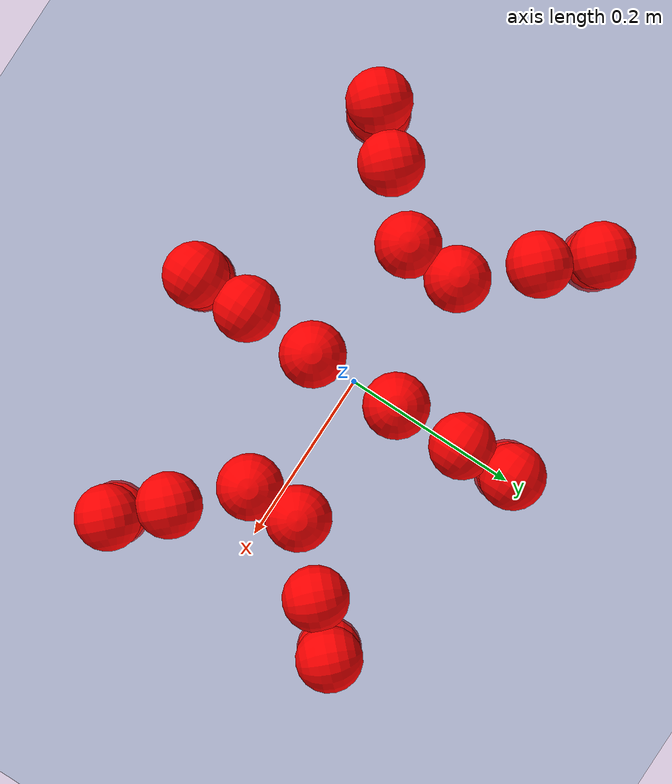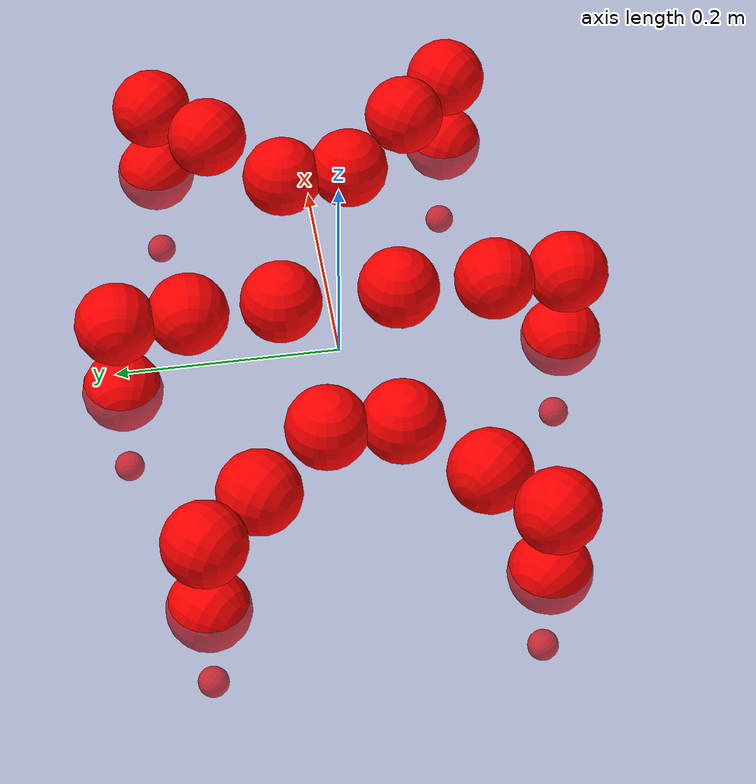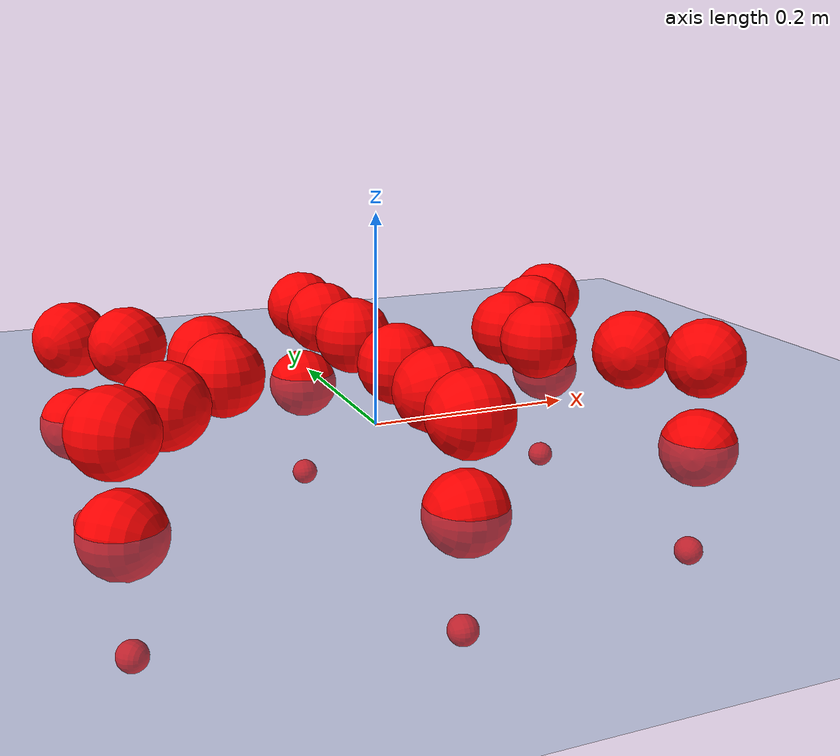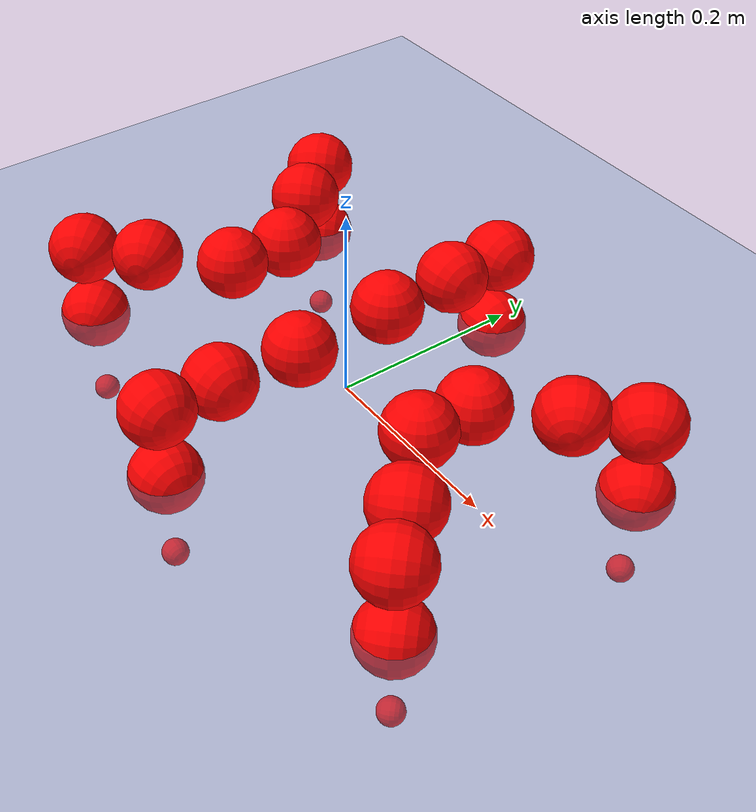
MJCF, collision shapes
<mujoco model="Golem">
  <compiler angle="radian" assetdir="assets" balanceinertia="true" inertiafromgeom="false"/>

  <option timestep="0.005" density="1.2" viscosity="2e-05"/>

  <size nkey="1"/>

  <visual>
    <quality shadowsize="8192"/>
    <map shadowclip="0.5"/>
  </visual>

  <default>
    <default class="/">
      <joint armature="0.01" damping="0.01" frictionloss="0.01"/>
      <geom contype="0" conaffinity="0" group="1" solref="-1000 -80"/>
      <site size="0.01 0.005 0.005" group="5"/>
      <general forcelimited="true" biastype="affine" gainprm="25" biasprm="0 -25 -0.5"/>
      <default class="visual">
        <geom type="mesh" group="2"/>
      </default>
      <default class="collision">
        <geom group="3"/>
      </default>
      <default class="foot">
        <geom size="0.01 0 0" condim="6" group="4" priority="1" solimp="0.015 1 0.01"/>
      </default>
      <default class="reward_collision_sphere">
        <geom group="5" rgba="1 0 0 1"/>
      </default>
    </default>
  </default>

  <asset>
    <texture type="skybox" colorspace="auto" name="//unnamed_texture_0" builtin="gradient" rgb1="0.95 0.95 0.95" rgb2="0.95 0.95 0.95" width="100" height="600"/>
    <texture type="2d" colorspace="auto" name="texplane" builtin="checker" rgb1="0.345 0.575 0.748" rgb2="0.345 0.575 0.748" markrgb="1 1 1" width="512" height="512"/>
    <material name="MatPlane" class="/" texture="texplane" texuniform="true" texrepeat="2 2" specular="0.9"/>
    <mesh name="body" class="/" file="body.stl" scale="0.001 0.001 0.001"/>
    <mesh name="coxa" class="/" file="coxa.stl" scale="0.001 0.001 0.001"/>
    <mesh name="femur" class="/" file="femur.stl" scale="0.001 0.001 0.001"/>
    <mesh name="tibia" class="/" file="tibia.stl" scale="0.001 0.001 0.001"/>
    <mesh name="tarsus" class="/" file="tarsus.stl" scale="0.001 0.001 0.001"/>
  </asset>

  <worldbody>
    <geom name="floor" class="/" size="100 100 0.125" type="plane" group="0" material="MatPlane"/>
    <light name="toplight_shadow" class="/" pos="0 0 5" dir="0.0990148 0.0990148 -0.990148" type="directional" ambient="0.04 0.04 0.04" diffuse="0.55 0.55 0.55" specular="0.12 0.12 0.12"/>
    <light name="toplight_fill" class="/" pos="0 0 5" dir="0.0990148 0.0990148 -0.990148" type="directional" castshadow="false" ambient="0.04 0.04 0.04" diffuse="0.3 0.3 0.3" specular="0.08 0.08 0.08"/>
    <body name="trunk" pos="-0.000184857 8.52039e-06 0.000599904" quat="1 4.26194e-05 -0.000273576 0.000128825">
      <inertial pos="0.000989215 -0.00131802 -0.00117996" quat="0.999995 0.000927906 0.0028965 0.00038374" mass="2.84268" diaginertia="0.00922033 0.000891451 0.0193611"/>
      <joint name="//unnamed_joint_0" type="free"/>
      <geom name="//unnamed_geom_1" class="/" pos="0 0 0.0726044" quat="1 0 0 0" type="mesh" rgba="0.9 0.9 0.9 1" mesh="body"/>
      <site name="imu" class="/" pos="0.12923 0.00128372 0.104389" size="0.00907085"/>
      <camera name="track" class="/" pos="0 -1.22531 0" quat="0.707107 0.707107 0 0" mode="trackcom"/>
      <camera name="ego_camera" class="/" pos="0.126641 0 0.113444" quat="-0.5 -0.5 0.5 0.5"/>
      <body name="coxa_RR" pos="-0.173859 -0.051828 0.0738811" quat="0.382647 3.84222e-05 -5.15558e-05 -0.923895">
        <inertial pos="-0.000570589 0.000576435 0.000390329" quat="1 -0.000705944 -0.000323411 2.91686e-05" mass="0.149191" diaginertia="0.00882466 0.00087628 0.0186715"/>
        <joint name="coxa_joint_RR" class="/" pos="0 0 0" axis="-0.00677242 -0.00450292 -0.999967" range="-3.13868 3.13583" armature="0.00912778" damping="0" frictionloss="0.0090742"/>
        <geom name="//unnamed_geom_2" class="/" type="mesh" rgba="0.2 0.2 0.2 1" mesh="coxa"/>
        <geom name="//unnamed_geom_3" class="reward_collision_sphere" size="0.0362834" pos="-0.0292247 0 0"/>
        <body name="femur_RR" pos="0.0595778 -7.87665e-05 -0.000716272" quat="0.500195 -0.499933 0.499865 0.500007">
          <inertial pos="-0.000614761 -0.000234253 0.000466556" quat="1 0.000259153 0.000770389 -0.000520112" mass="0.146997" diaginertia="0.00882594 0.000845326 0.0183194"/>
          <joint name="femur_joint_RR" class="/" pos="0 0 0" axis="-0.00791455 0.00433176 -0.999959" range="-3.14113 3.1193" armature="0.00909437" damping="0.000286951" frictionloss="0.00865055"/>
          <geom name="//unnamed_geom_4" class="/" type="mesh" rgba="0.9 0.9 0.9 1" mesh="femur"/>
          <geom name="//unnamed_geom_5" class="reward_collision_sphere" size="0.0362834"/>
          <body name="tibia_RR" pos="0.00075421 -0.0674022 -0.0013653" quat="2.82669e-05 1 -5.36829e-05 -3.05718e-05">
            <inertial pos="-0.000364102 -0.00180285 0.000275039" quat="0.999948 0.00793753 0.00619518 0.00139577" mass="0.149481" diaginertia="0.00892512 0.000866513 0.0187137"/>
            <joint name="tibia_joint_RR" class="/" pos="0 0 0" axis="-0.00148573 0.000819461 0.999999" range="-3.13808 3.15112" armature="0.00920607" damping="0" frictionloss="0.00953114"/>
            <geom name="//unnamed_geom_6" class="/" type="mesh" rgba="0.2 0.2 0.2 1" mesh="tibia"/>
            <geom name="//unnamed_geom_7" class="reward_collision_sphere" size="0.0362834"/>
            <body name="tarsus_RR" pos="0.082744 -0.00192193 -7.7434e-05" quat="1 0.00021749 0.000116714 -9.85193e-05">
              <inertial pos="0.0585775 0.000680408 -0.000172162" quat="0.496378 0.504273 0.503604 0.495681" mass="0.151795" diaginertia="0.00884441 0.000865175 0.0185693"/>
              <joint name="tarsus_joint_RR" class="/" pos="0 0 0" axis="2.77521e-06 0.000694622 1" range="-3.14041 3.13663" armature="0.00945007" damping="0.00501297" frictionloss="0.00944338"/>
              <geom name="//unnamed_geom_8" class="/" type="mesh" rgba="0.9 0.9 0.9 1" mesh="tarsus"/>
              <geom name="foot_1" class="foot" size="0.00876076" pos="0.109106 0 0" quat="0 -0.707107 0 0.707107"/>
              <geom name="//unnamed_geom_10" class="reward_collision_sphere" size="0.0362834"/>
              <geom name="//unnamed_geom_11" class="reward_collision_sphere" size="0.0136063" pos="0.104722 0 0"/>
              <site name="foot_1" class="foot" pos="0.109106 0 0" quat="0 -0.707107 0 0.707107" size="0.00907085"/>
            </body>
          </body>
        </body>
      </body>
      <body name="coxa_RM" pos="-0.000364291 -0.0818933 0.0734508" quat="0.706452 0.000400204 6.62411e-05 -0.707761">
        <inertial pos="0.000529488 -0.00024833 -0.000869641" quat="1 0.000175365 -0.000273086 0.000117671" mass="0.151004" diaginertia="0.00884502 0.000876015 0.0187264"/>
        <joint name="coxa_joint_RM" class="/" pos="0 0 0" axis="3.52927e-05 -0.000977249 -1" range="-3.12946 3.13878" armature="0.0092824" damping="0.0126628" frictionloss="0.00861181"/>
        <geom name="//unnamed_geom_12" class="/" type="mesh" rgba="0.2 0.2 0.2 1" mesh="coxa"/>
        <geom name="//unnamed_geom_13" class="reward_collision_sphere" size="0.0362834" pos="-0.0292247 0 0"/>
        <body name="femur_RM" pos="0.0561228 -0.00215993 0.000876312" quat="0.499998 -0.500034 0.499986 0.499982">
          <inertial pos="0.00192438 4.02862e-05 -0.000312153" quat="0.999988 -0.000142585 -0.00386079 -0.00306665" mass="0.146175" diaginertia="0.00841771 0.0008472 0.0179443"/>
          <joint name="femur_joint_RM" class="/" pos="0 0 0" axis="0.000348202 0.000999671 -0.999999" range="-3.14375 3.10437" armature="0.00875434" damping="0.00890918" frictionloss="0.009339"/>
          <geom name="//unnamed_geom_14" class="/" type="mesh" rgba="0.9 0.9 0.9 1" mesh="femur"/>
          <geom name="//unnamed_geom_15" class="reward_collision_sphere" size="0.0362834"/>
          <body name="tibia_RM" pos="0.000618665 -0.0646316 -0.00047444" quat="6.41628e-06 1 -0.000141856 -4.64196e-05">
            <inertial pos="0.000276687 0.00236693 0.000598976" quat="0.999999 -0.00158288 -4.96056e-05 -0.000316133" mass="0.149784" diaginertia="0.00881409 0.000867077 0.0188341"/>
            <joint name="tibia_joint_RM" class="/" pos="0 0 0" axis="0.00110587 2.48578e-05 0.999999" range="-3.13879 3.1362" armature="0.00947307" damping="0.0165787" frictionloss="0.00905442"/>
            <geom name="//unnamed_geom_16" class="/" type="mesh" rgba="0.2 0.2 0.2 1" mesh="tibia"/>
            <geom name="//unnamed_geom_17" class="reward_collision_sphere" size="0.0362834"/>
            <body name="tarsus_RM" pos="0.0832579 -0.00115301 0.000718527" quat="1 -2.48836e-05 4.00339e-05 -2.18501e-05">
              <inertial pos="0.0597725 -0.000154021 -0.000679557" quat="0.500171 0.499953 0.499893 0.499983" mass="0.153546" diaginertia="0.008767 0.000867329 0.0193026"/>
              <joint name="tarsus_joint_RM" class="/" pos="0 0 0" axis="-0.00403987 0.00215976 0.99999" stiffness="0.00196291" range="-3.15346 3.11706" armature="0.00897157" damping="0.00823962" frictionloss="0.00875062"/>
              <geom name="//unnamed_geom_18" class="/" type="mesh" rgba="0.9 0.9 0.9 1" mesh="tarsus"/>
              <geom name="foot_2" class="foot" size="0.00912343" pos="0.109106 0 0" quat="0 -0.707107 0 0.707107"/>
              <geom name="//unnamed_geom_20" class="reward_collision_sphere" size="0.0362834"/>
              <geom name="//unnamed_geom_21" class="reward_collision_sphere" size="0.0136063" pos="0.104722 0 0"/>
              <site name="foot_2" class="foot" pos="0.109106 0 0" quat="0 -0.707107 0 0.707107" size="0.00907085"/>
            </body>
          </body>
        </body>
      </body>
      <body name="coxa_RF" pos="0.174681 -0.051975 0.0745848" quat="0.923723 -3.76423e-05 -5.20839e-05 -0.383062">
        <inertial pos="0.000618088 -0.00185711 0.000948901" quat="0.999963 -0.00183795 0.00781426 -0.00312253" mass="0.146904" diaginertia="0.0088477 0.000860312 0.0186877"/>
        <joint name="coxa_joint_RF" class="/" pos="0 0 0" axis="0.00118378 0.000719711 -0.999999" range="-3.10061 3.12488" armature="0.00858475" damping="0" frictionloss="0.00916348"/>
        <geom name="//unnamed_geom_22" class="/" type="mesh" rgba="0.2 0.2 0.2 1" mesh="coxa"/>
        <geom name="//unnamed_geom_23" class="reward_collision_sphere" size="0.0362834" pos="-0.0292247 0 0"/>
        <body name="femur_RF" pos="0.0590204 0.00111418 -0.000448222" quat="0.500029 -0.499992 0.500013 0.499966">
          <inertial pos="-0.000368371 0.00162636 0.000218479" quat="0.999991 0.000674695 -0.00401878 0.00077502" mass="0.149926" diaginertia="0.00909643 0.00088213 0.0194987"/>
          <joint name="femur_joint_RF" class="/" pos="0 0 0" axis="-0.000297081 -0.00181857 -0.999998" range="-3.14876 3.15409" armature="0.0090637" damping="0.00958308" frictionloss="0.00943869"/>
          <geom name="//unnamed_geom_24" class="/" type="mesh" rgba="0.9 0.9 0.9 1" mesh="femur"/>
          <geom name="//unnamed_geom_25" class="reward_collision_sphere" size="0.0362834"/>
          <body name="tibia_RF" pos="0.000793109 -0.0661897 -0.000595923" quat="-3.1284e-06 1 3.73616e-05 0.00013154">
            <inertial pos="0.000351953 0.000292669 -0.002188" quat="0.999977 -0.00527972 0.00258988 0.00324673" mass="0.15192" diaginertia="0.00893571 0.000854539 0.019199"/>
            <joint name="tibia_joint_RF" class="/" pos="0 0 0" axis="0.0022079 -0.00483105 0.999986" stiffness="0.00138935" range="-3.13661 3.12649" armature="0.0088865" damping="0.0127989" frictionloss="0.00884677"/>
            <geom name="//unnamed_geom_26" class="/" type="mesh" rgba="0.2 0.2 0.2 1" mesh="tibia"/>
            <geom name="//unnamed_geom_27" class="reward_collision_sphere" size="0.0362834"/>
            <body name="tarsus_RF" pos="0.0861834 0.00125333 -0.00120519" quat="1 -0.000296012 -0.00013164 -5.80903e-05">
              <inertial pos="0.0591061 -0.000157512 -0.000740144" quat="0.500503 0.499572 0.500035 0.499889" mass="0.148677" diaginertia="0.00883519 0.000842918 0.0182308"/>
              <joint name="tarsus_joint_RF" class="/" pos="0 0 0" axis="0.000379581 0.00222241 0.999997" stiffness="0.0234768" range="-3.1242 3.13815" armature="0.00887423" damping="0" frictionloss="0.00905546"/>
              <geom name="//unnamed_geom_28" class="/" type="mesh" rgba="0.9 0.9 0.9 1" mesh="tarsus"/>
              <geom name="foot_3" class="foot" size="0.00928298" pos="0.109106 0 0" quat="0 -0.707107 0 0.707107"/>
              <geom name="//unnamed_geom_30" class="reward_collision_sphere" size="0.0362834"/>
              <geom name="//unnamed_geom_31" class="reward_collision_sphere" size="0.0136063" pos="0.104722 0 0"/>
              <site name="foot_3" class="foot" pos="0.109106 0 0" quat="0 -0.707107 0 0.707107" size="0.00907085"/>
            </body>
          </body>
        </body>
      </body>
      <body name="coxa_LR" pos="-0.171855 0.0528862 0.0744943" quat="0.382767 -0.000310292 8.0988e-05 0.923845">
        <inertial pos="-0.000211621 -0.00121036 0.000192383" quat="0.999995 0.000673354 0.000514136 -0.00309498" mass="0.148617" diaginertia="0.00896891 0.000853529 0.0181698"/>
        <joint name="coxa_joint_LR" class="/" pos="0 0 0" axis="-0.00137942 0.00221962 -0.999997" range="-3.12924 3.12067" armature="0.00860991" damping="0.0094879" frictionloss="0.00921622"/>
        <geom name="//unnamed_geom_32" class="/" type="mesh" rgba="0.2 0.2 0.2 1" mesh="coxa"/>
        <geom name="//unnamed_geom_33" class="reward_collision_sphere" size="0.0362834" pos="-0.0292247 0 0"/>
        <body name="femur_LR" pos="0.059343 -0.00297536 -0.000288916" quat="0.500156 -0.499672 0.500508 0.499663">
          <inertial pos="0.000316592 -0.00248394 0.000167847" quat="1 0.000211557 -4.06506e-05 -0.000190303" mass="0.15015" diaginertia="0.00857289 0.000867067 0.0183237"/>
          <joint name="femur_joint_LR" class="/" pos="0 0 0" axis="0.00128775 0.00209082 0.999997" stiffness="0.000661647" range="-3.1092 3.13459" armature="0.00883717" damping="0" frictionloss="0.00908531"/>
          <geom name="//unnamed_geom_34" class="/" type="mesh" rgba="0.9 0.9 0.9 1" mesh="femur"/>
          <geom name="//unnamed_geom_35" class="reward_collision_sphere" size="0.0362834"/>
          <body name="tibia_LR" pos="0.0020853 -0.0673905 -0.00365527" quat="-0.000201308 1 -1.26502e-05 -0.000155934">
            <inertial pos="-0.000675568 -0.000855133 0.00089803" quat="0.999977 -0.000981499 -0.00601587 -0.00290081" mass="0.14927" diaginertia="0.00862594 0.000862428 0.0186921"/>
            <joint name="tibia_joint_LR" class="/" pos="0 0 0" axis="-0.00330195 0.000833483 -0.999994" range="-3.15059 3.17212" armature="0.00864703" damping="0" frictionloss="0.00909561"/>
            <geom name="//unnamed_geom_36" class="/" type="mesh" rgba="0.2 0.2 0.2 1" mesh="tibia"/>
            <geom name="//unnamed_geom_37" class="reward_collision_sphere" size="0.0362834"/>
            <body name="tarsus_LR" pos="0.0859106 0.00032069 -0.001162" quat="1 -7.97944e-05 -7.34411e-05 -0.000110081">
              <inertial pos="0.0610262 -0.00160822 -0.00139663" quat="0.502869 0.496083 0.501085 0.499939" mass="0.148909" diaginertia="0.00864901 0.000868646 0.0183982"/>
              <joint name="tarsus_joint_LR" class="/" pos="0 0 0" axis="-0.00959391 -0.00662876 -0.999932" range="-3.11901 3.14504" armature="0.00886294" damping="0" frictionloss="0.00922026"/>
              <geom name="//unnamed_geom_38" class="/" type="mesh" rgba="0.9 0.9 0.9 1" mesh="tarsus"/>
              <geom name="foot_4" class="foot" size="0.00983605" pos="0.109106 0 0" quat="0.707107 0 -0.707107 0"/>
              <geom name="//unnamed_geom_40" class="reward_collision_sphere" size="0.0362834"/>
              <geom name="//unnamed_geom_41" class="reward_collision_sphere" size="0.0136063" pos="0.104722 0 0"/>
              <site name="foot_4" class="foot" pos="0.109106 0 0" quat="0.707107 0 -0.707107 0" size="0.00907085"/>
            </body>
          </body>
        </body>
      </body>
      <body name="coxa_LM" pos="-0.00310825 0.0807493 0.0745995" quat="0.706999 0.000101421 -0.000145807 0.707214">
        <inertial pos="0.00108599 -0.000431785 -0.000728757" quat="0.999976 0.00263658 -0.004636 -0.00449111" mass="0.151402" diaginertia="0.00890305 0.000887273 0.0193371"/>
        <joint name="coxa_joint_LM" class="/" pos="0 0 0" axis="-0.0107446 0.00504165 -0.99993" range="-3.14099 3.12899" armature="0.00865452" damping="0.0047973" frictionloss="0.00895646"/>
        <geom name="//unnamed_geom_42" class="/" type="mesh" rgba="0.2 0.2 0.2 1" mesh="coxa"/>
        <geom name="//unnamed_geom_43" class="reward_collision_sphere" size="0.0362834" pos="-0.0292247 0 0"/>
        <body name="femur_LM" pos="0.0527555 0.00231823 -0.000564296" quat="0.499991 -0.499993 0.500003 0.500013">
          <inertial pos="0.000197491 -8.75717e-05 0.000810828" quat="0.999995 1.27663e-05 -0.00257434 -0.00176195" mass="0.148738" diaginertia="0.00866691 0.000892282 0.0191626"/>
          <joint name="femur_joint_LM" class="/" pos="0 0 0" axis="-0.0019845 -0.00109722 0.999997" range="-3.15601 3.15005" armature="0.00905245" damping="0" frictionloss="0.0089744"/>
          <geom name="//unnamed_geom_44" class="/" type="mesh" rgba="0.9 0.9 0.9 1" mesh="femur"/>
          <geom name="//unnamed_geom_45" class="reward_collision_sphere" size="0.0362834"/>
          <body name="tibia_LM" pos="0.000867738 -0.0627164 0.00197074" quat="-0.000327368 1 0.00029827 0.000283392">
            <inertial pos="-0.000319903 -0.00108936 -0.00131011" quat="0.999969 -0.00334386 0.00704312 -0.000826581" mass="0.148224" diaginertia="0.00873433 0.000883336 0.0189045"/>
            <joint name="tibia_joint_LM" class="/" pos="0 0 0" axis="-0.000649613 3.7596e-06 -1" range="-3.14048 3.14024" armature="0.00903064" damping="0.000522078" frictionloss="0.00864739"/>
            <geom name="//unnamed_geom_46" class="/" type="mesh" rgba="0.2 0.2 0.2 1" mesh="tibia"/>
            <geom name="//unnamed_geom_47" class="reward_collision_sphere" size="0.0362834"/>
            <body name="tarsus_LM" pos="0.086853 -0.000740541 -0.000673493" quat="1 0.000431309 0.000105949 0.000338753">
              <inertial pos="0.0586369 -0.000192788 -0.000589949" quat="0.501395 0.499157 0.494105 0.505278" mass="0.150867" diaginertia="0.00895686 0.000868173 0.0186765"/>
              <joint name="tarsus_joint_LM" class="/" pos="0 0 0" axis="-0.00411259 0.00710952 -0.999966" range="-3.1278 3.12884" armature="0.00892914" damping="0.000111384" frictionloss="0.00976954"/>
              <geom name="//unnamed_geom_48" class="/" type="mesh" rgba="0.9 0.9 0.9 1" mesh="tarsus"/>
              <geom name="foot_5" class="foot" size="0.00899799" pos="0.109106 0 0" quat="0.707107 0 -0.707107 0"/>
              <geom name="//unnamed_geom_50" class="reward_collision_sphere" size="0.0362834"/>
              <geom name="//unnamed_geom_51" class="reward_collision_sphere" size="0.0136063" pos="0.104722 0 0"/>
              <site name="foot_5" class="foot" pos="0.109106 0 0" quat="0.707107 0 -0.707107 0" size="0.00907085"/>
            </body>
          </body>
        </body>
      </body>
      <body name="coxa_LF" pos="0.174814 0.0504402 0.072222" quat="0.923868 2.8081e-05 -1.28139e-05 0.382711">
        <inertial pos="-5.48047e-05 -4.37618e-05 0.00145005" quat="0.999996 -0.00143347 0.000106854 0.00235407" mass="0.149295" diaginertia="0.0085825 0.000879783 0.0187546"/>
        <joint name="coxa_joint_LF" class="/" pos="0 0 0" axis="-0.00992349 0.00195321 -0.999949" range="-3.14216 3.13609" armature="0.00863308" damping="0.00595871" frictionloss="0.0101043"/>
        <geom name="//unnamed_geom_52" class="/" type="mesh" rgba="0.2 0.2 0.2 1" mesh="coxa"/>
        <geom name="//unnamed_geom_53" class="reward_collision_sphere" size="0.0362834" pos="-0.0292247 0 0"/>
        <body name="femur_LF" pos="0.058054 0.000519279 0.000368869" quat="0.499999 -0.5 0.5 0.500002">
          <inertial pos="-0.00225017 0.000738453 0.00227094" quat="0.999997 -0.00109763 -0.00170521 0.00137602" mass="0.151129" diaginertia="0.00897335 0.000869972 0.0188434"/>
          <joint name="femur_joint_LF" class="/" pos="0 0 0" axis="-0.00346312 -9.53647e-05 0.999994" range="-3.13779 3.13305" armature="0.00899993" damping="0" frictionloss="0.00882976"/>
          <geom name="//unnamed_geom_54" class="/" type="mesh" rgba="0.9 0.9 0.9 1" mesh="femur"/>
          <geom name="//unnamed_geom_55" class="reward_collision_sphere" size="0.0362834"/>
          <body name="tibia_LF" pos="-0.000630707 -0.0656406 0.000873" quat="0.000228112 1 -5.16503e-05 -1.44897e-05">
            <inertial pos="0.000930782 -0.00209885 -0.000589389" quat="1 5.37498e-05 -0.000342859 -0.000290491" mass="0.143107" diaginertia="0.00829778 0.000835792 0.0180228"/>
            <joint name="tibia_joint_LF" class="/" pos="0 0 0" axis="-0.00369738 -0.00428711 -0.999984" stiffness="0.00109109" range="-3.13333 3.1485" armature="0.00918617" damping="0" frictionloss="0.00895771"/>
            <geom name="//unnamed_geom_56" class="/" type="mesh" rgba="0.2 0.2 0.2 1" mesh="tibia"/>
            <geom name="//unnamed_geom_57" class="reward_collision_sphere" size="0.0362834"/>
            <body name="tarsus_LF" pos="0.0841814 0.000899922 0.00146368" quat="1 2.50446e-05 -5.506e-05 -3.38859e-05">
              <inertial pos="0.0587248 1.94965e-05 -0.000253134" quat="0.499892 0.500244 0.499766 0.500099" mass="0.143885" diaginertia="0.00842292 0.000829687 0.0180536"/>
              <joint name="tarsus_joint_LF" class="/" pos="0 0 0" axis="-0.00257137 -0.00448994 -0.999987" range="-3.14373 3.13918" armature="0.00947135" damping="0.0142221" frictionloss="0.00811228"/>
              <geom name="//unnamed_geom_58" class="/" type="mesh" rgba="0.9 0.9 0.9 1" mesh="tarsus"/>
              <geom name="foot_6" class="foot" size="0.008675" pos="0.109106 0 0" quat="0.707107 0 -0.707107 0"/>
              <geom name="//unnamed_geom_60" class="reward_collision_sphere" size="0.0362834"/>
              <geom name="//unnamed_geom_61" class="reward_collision_sphere" size="0.0136063" pos="0.104722 0 0"/>
              <site name="foot_6" class="foot" pos="0.109106 0 0" quat="0.707107 0 -0.707107 0" size="0.00907085"/>
            </body>
          </body>
        </body>
      </body>
    </body>
  </worldbody>

  <contact>
    <pair class="/" geom1="floor" geom2="foot_1" name="//unnamed_contact_0"/>
    <pair class="/" geom1="floor" geom2="foot_2" name="//unnamed_contact_1"/>
    <pair class="/" geom1="floor" geom2="foot_3" name="//unnamed_contact_2"/>
    <pair class="/" geom1="floor" geom2="foot_4" name="//unnamed_contact_3"/>
    <pair class="/" geom1="floor" geom2="foot_5" name="//unnamed_contact_4"/>
    <pair class="/" geom1="floor" geom2="foot_6" name="//unnamed_contact_5"/>
  </contact>

  <actuator>
    <general name="coxa_joint_RR" class="/" joint="coxa_joint_RR" forcerange="-6.87261 6.87261" gainprm="22.225" biasprm="0 -22.225 -0.487754"/>
    <general name="femur_joint_RR" class="/" joint="femur_joint_RR" forcerange="-6.48846 6.48846" gainprm="22.225" biasprm="0 -22.225 -0.487754"/>
    <general name="tibia_joint_RR" class="/" joint="tibia_joint_RR" forcerange="-6.82846 6.82846" gainprm="22.225" biasprm="0 -22.225 -0.487754"/>
    <general name="tarsus_joint_RR" class="/" joint="tarsus_joint_RR" forcerange="-6.97749 6.97749" gainprm="22.225" biasprm="0 -22.225 -0.487754"/>
    <general name="coxa_joint_RM" class="/" joint="coxa_joint_RM" forcerange="-6.75685 6.75685" gainprm="22.225" biasprm="0 -22.225 -0.487754"/>
    <general name="femur_joint_RM" class="/" joint="femur_joint_RM" forcerange="-6.62696 6.62696" gainprm="22.225" biasprm="0 -22.225 -0.487754"/>
    <general name="tibia_joint_RM" class="/" joint="tibia_joint_RM" forcerange="-6.61392 6.61392" gainprm="22.225" biasprm="0 -22.225 -0.487754"/>
    <general name="tarsus_joint_RM" class="/" joint="tarsus_joint_RM" forcerange="-7.11956 7.11956" gainprm="22.225" biasprm="0 -22.225 -0.487754"/>
    <general name="coxa_joint_RF" class="/" joint="coxa_joint_RF" forcerange="-6.47385 6.47385" gainprm="22.225" biasprm="0 -22.225 -0.487754"/>
    <general name="femur_joint_RF" class="/" joint="femur_joint_RF" forcerange="-6.16947 6.16947" gainprm="22.225" biasprm="0 -22.225 -0.487754"/>
    <general name="tibia_joint_RF" class="/" joint="tibia_joint_RF" forcerange="-6.60998 6.60998" gainprm="22.225" biasprm="0 -22.225 -0.487754"/>
    <general name="tarsus_joint_RF" class="/" joint="tarsus_joint_RF" forcerange="-6.56684 6.56684" gainprm="22.225" biasprm="0 -22.225 -0.487754"/>
    <general name="coxa_joint_LR" class="/" joint="coxa_joint_LR" forcerange="-6.70686 6.70686" gainprm="22.225" biasprm="0 -22.225 -0.487754"/>
    <general name="femur_joint_LR" class="/" joint="femur_joint_LR" forcerange="-6.61572 6.61572" gainprm="22.225" biasprm="0 -22.225 -0.487754"/>
    <general name="tibia_joint_LR" class="/" joint="tibia_joint_LR" forcerange="-6.64427 6.64427" gainprm="22.225" biasprm="0 -22.225 -0.487754"/>
    <general name="tarsus_joint_LR" class="/" joint="tarsus_joint_LR" forcerange="-6.69978 6.69978" gainprm="22.225" biasprm="0 -22.225 -0.487754"/>
    <general name="coxa_joint_LM" class="/" joint="coxa_joint_LM" forcerange="-6.61206 6.61206" gainprm="22.225" biasprm="0 -22.225 -0.487754"/>
    <general name="femur_joint_LM" class="/" joint="femur_joint_LM" forcerange="-6.63902 6.63902" gainprm="22.225" biasprm="0 -22.225 -0.487754"/>
    <general name="tibia_joint_LM" class="/" joint="tibia_joint_LM" forcerange="-6.87422 6.87422" gainprm="22.225" biasprm="0 -22.225 -0.487754"/>
    <general name="tarsus_joint_LM" class="/" joint="tarsus_joint_LM" forcerange="-6.67328 6.67328" gainprm="22.225" biasprm="0 -22.225 -0.487754"/>
    <general name="coxa_joint_LF" class="/" joint="coxa_joint_LF" forcerange="-6.28513 6.28513" gainprm="22.225" biasprm="0 -22.225 -0.487754"/>
    <general name="femur_joint_LF" class="/" joint="femur_joint_LF" forcerange="-6.70203 6.70203" gainprm="22.225" biasprm="0 -22.225 -0.487754"/>
    <general name="tibia_joint_LF" class="/" joint="tibia_joint_LF" forcerange="-6.53425 6.53425" gainprm="22.225" biasprm="0 -22.225 -0.487754"/>
    <general name="tarsus_joint_LF" class="/" joint="tarsus_joint_LF" forcerange="-6.87114 6.87114" gainprm="22.225" biasprm="0 -22.225 -0.487754"/>
  </actuator>

  <sensor>
    <gyro site="imu" name="imu_angular_velocity"/>
    <velocimeter site="imu" name="imu_linear_velocity"/>
    <framelinvel objtype="site" objname="foot_1" name="foot_1_global_linear_velocity"/>
    <framelinvel objtype="site" objname="foot_2" name="foot_2_global_linear_velocity"/>
    <framelinvel objtype="site" objname="foot_3" name="foot_3_global_linear_velocity"/>
    <framelinvel objtype="site" objname="foot_4" name="foot_4_global_linear_velocity"/>
    <framelinvel objtype="site" objname="foot_5" name="foot_5_global_linear_velocity"/>
    <framelinvel objtype="site" objname="foot_6" name="foot_6_global_linear_velocity"/>
  </sensor>

  <keyframe>
    <key name="home" qpos="0 0 0.1457 1 0 0 0 0 0 0 0 0 0 0 0 0 0 0 0 0 0 0 0 0 0 0 0 0 0 0 0"/>
  </keyframe>
</mujoco>
